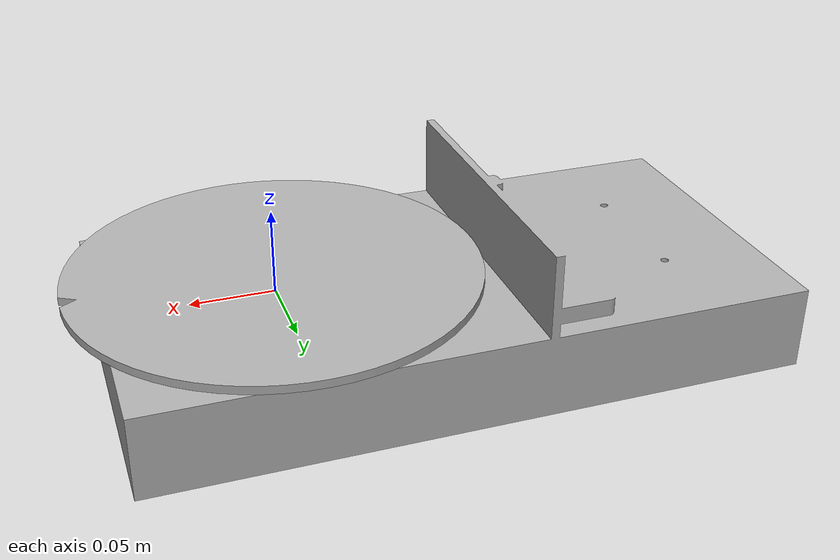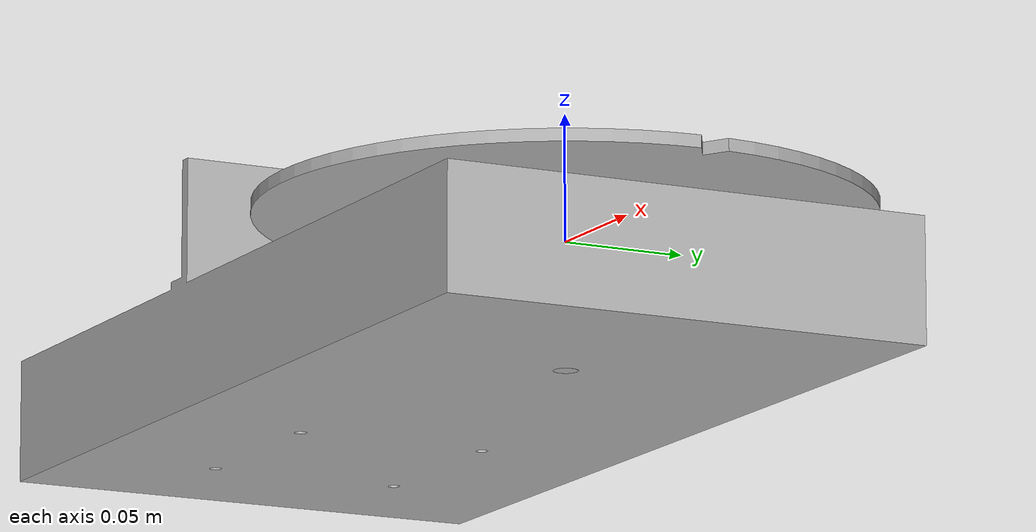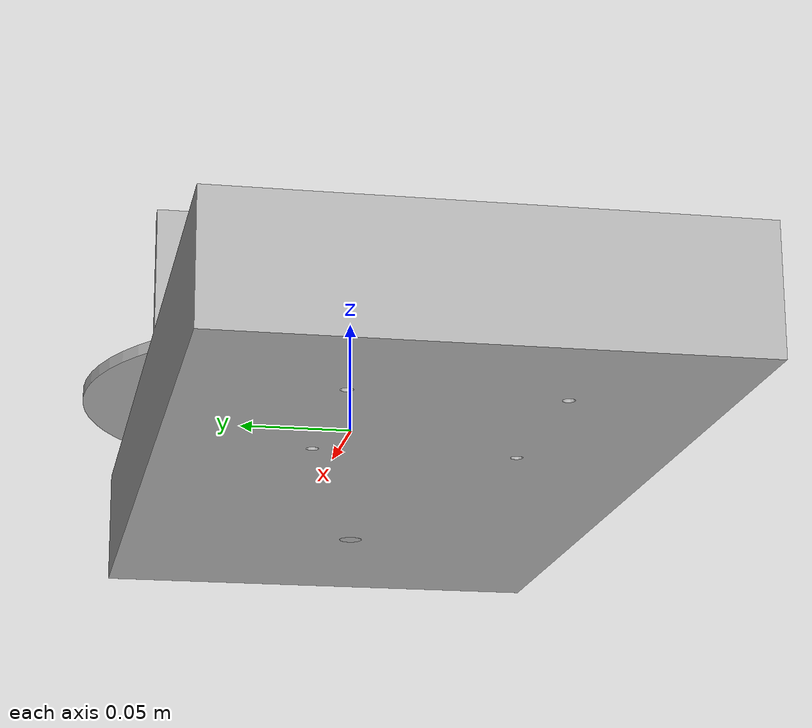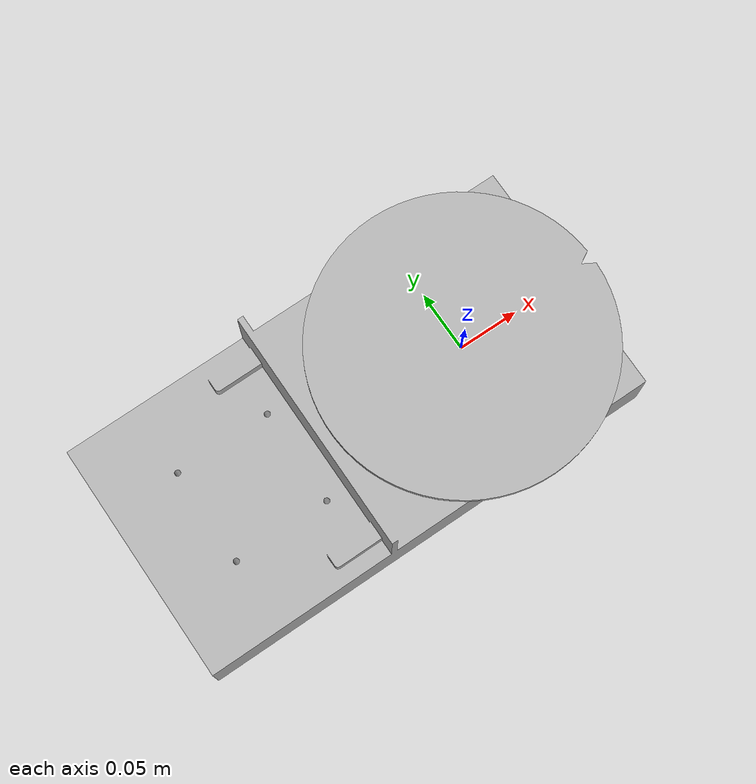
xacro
<?xml version="1.0" ?>
<robot name="turntable" xmlns:xacro="http://www.ros.org/wiki/xacro">

<xacro:include filename="$(find turntable_description)/urdf/materials.xacro" />
<xacro:include filename="$(find turntable_description)/urdf/turntable.trans" />
<xacro:include filename="$(find turntable_description)/urdf/turntable.gazebo" />
<link name="base_link">
  <inertial>
    <origin rpy="0 0 0" xyz="-0.09561896601193492 -3.680289632786638e-17 -0.024277270491337637"/>
    <mass value="4.191254406895512"/>
    <inertia ixx="0.015043" ixy="-0.0" ixz="0.000114" iyy="0.053437" iyz="-0.0" izz="0.066455"/>
  </inertial>
  <visual>
    <origin rpy="0 0 0" xyz="0 0 0"/>
    <geometry>
      <mesh filename="package://turntable_description/meshes/base_link.stl" scale="0.001 0.001 0.001"/>
    </geometry>
    <material name="silver"/>
  </visual>
  <collision>
    <origin rpy="0 0 0" xyz="0 0 0"/>
    <geometry>
      <mesh filename="package://turntable_description/meshes/base_link.stl" scale="0.001 0.001 0.001"/>
    </geometry>
  </collision>
</link>

<link name="turntable_1">
  <inertial>
    <origin rpy="0 0 0" xyz="-0.0001369541078106031 -4.680626089289325e-05 0.011799929335338064"/>
    <mass value="0.2394711948837742"/>
    <inertia ixx="0.000852" ixy="1e-06" ixz="0.0" iyy="0.000849" iyz="0.0" izz="0.001688"/>
  </inertial>
  <visual>
    <origin rpy="0 0 0" xyz="-0.0 -0.0 -0.0"/>
    <geometry>
      <mesh filename="package://turntable_description/meshes/turntable_1.stl" scale="0.001 0.001 0.001"/>
    </geometry>
    <material name="silver"/>
  </visual>
  <collision>
    <origin rpy="0 0 0" xyz="-0.0 -0.0 -0.0"/>
    <geometry>
      <mesh filename="package://turntable_description/meshes/turntable_1.stl" scale="0.001 0.001 0.001"/>
    </geometry>
  </collision>
</link>

<joint name="Rev2" type="continuous">
  <origin rpy="0 0 0" xyz="0.0 0.0 0.0"/>
  <parent link="base_link"/>
  <child link="turntable_1"/>
  <axis xyz="0.0 0.0 -1.0"/>
</joint>

</robot>

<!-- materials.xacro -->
<robot name="turntable" xmlns:xacro="http://www.ros.org/wiki/xacro" >

<material name="silver">
  <color rgba="0.700 0.700 0.700 1.000"/>
</material>

</robot>

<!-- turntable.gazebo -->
<robot name="turntable" xmlns:xacro="http://www.ros.org/wiki/xacro" >

<xacro:property name="body_color" value="Gazebo/Silver" />

<gazebo>
  <plugin filename="libgazebo_ros_control.so" name="control"/>
</gazebo>
<gazebo reference="base_link">
  <material>${body_color}</material>
  <mu1>0.2</mu1>
  <mu2>0.2</mu2>
  <selfCollide>true</selfCollide>
  <gravity>true</gravity>
</gazebo>

<gazebo reference="turntable_1">
  <material>${body_color}</material>
  <mu1>0.2</mu1>
  <mu2>0.2</mu2>
  <selfCollide>true</selfCollide>
</gazebo>

</robot>
